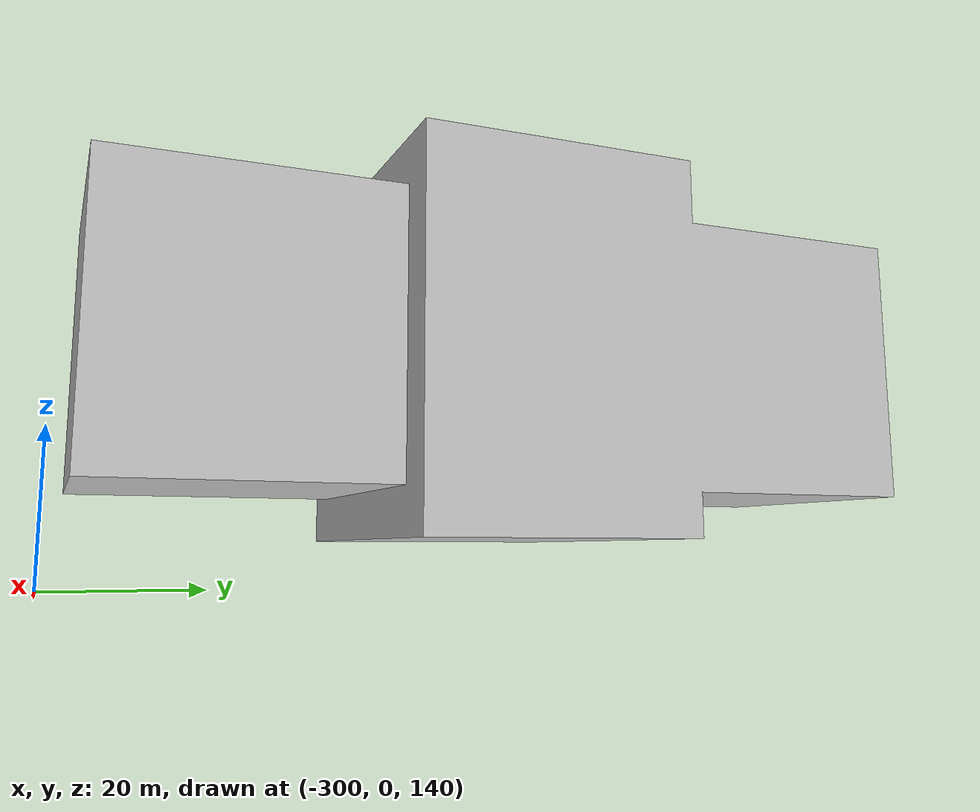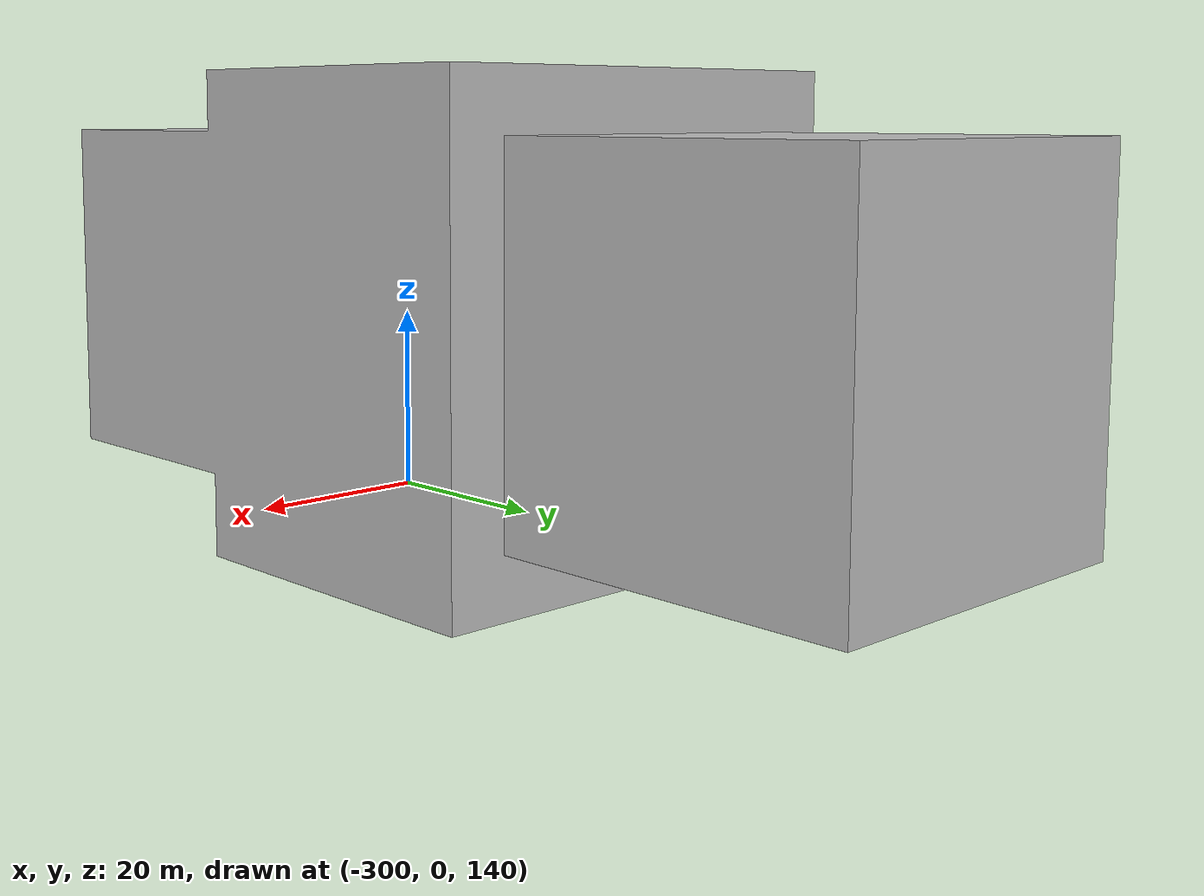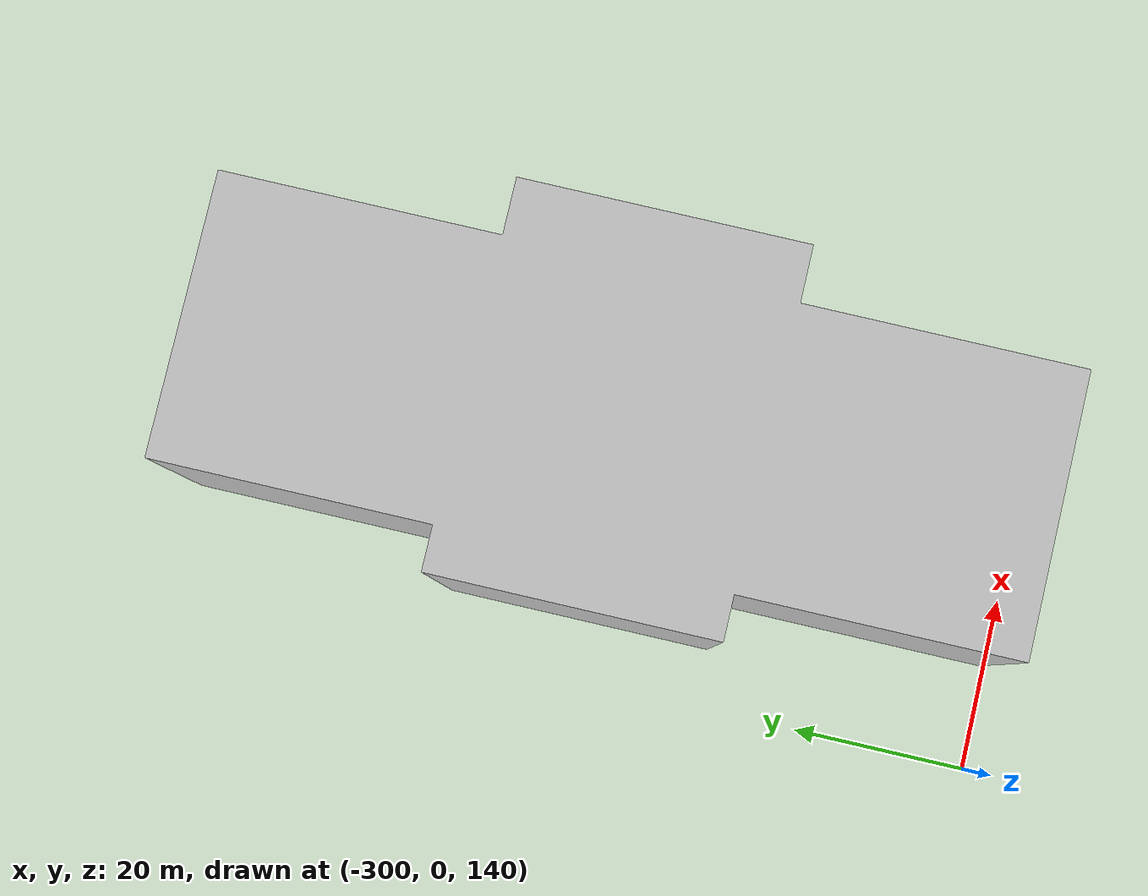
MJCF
<mujoco model="Ecke-1">
  <default>
    <default class="visual">
      <geom group="2" type="mesh" contype="0" conaffinity="0"/>
    </default>
    <default class="collision">
      <geom group="3" type="mesh"/>
    </default>
  </default>
  <asset>
    <material name="mat_1" specular="0.484529" shininess="1.0" rgba="0.752941 0.752941 0.752941 1.0"/>
    <mesh file="Ecke-1.obj"/>
  </asset>
  <worldbody>
    <body name="Ecke-1">
      <freejoint/>
      <geom material="mat_1" mesh="Ecke-1" class="visual"/>
      <geom mesh="Ecke-1" class="collision"/>
    </body>
  </worldbody>
</mujoco>
